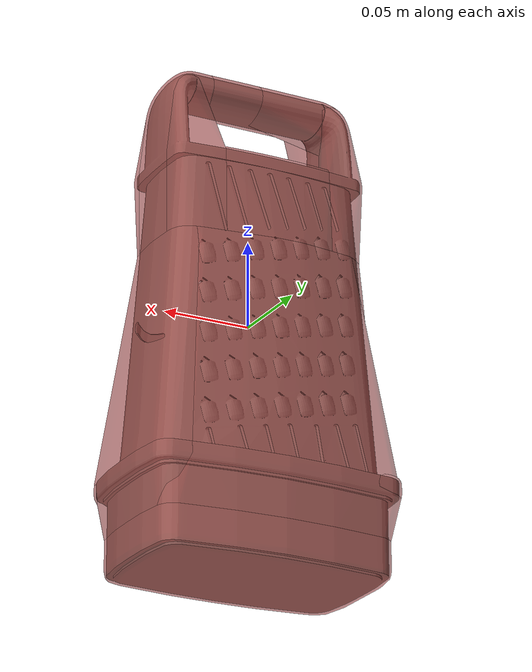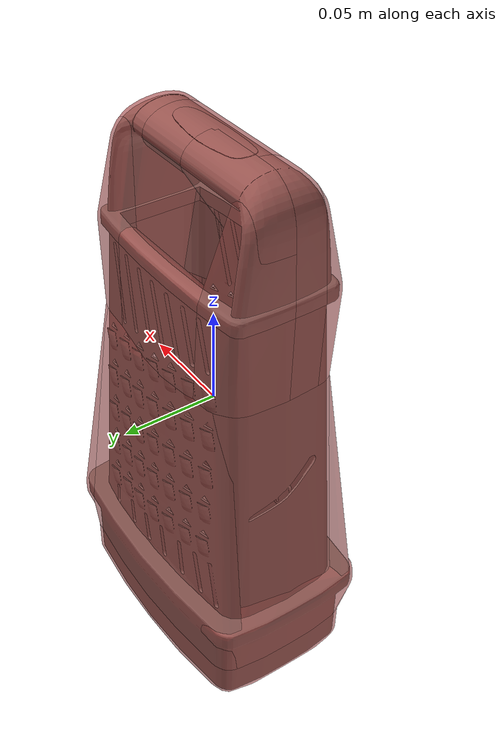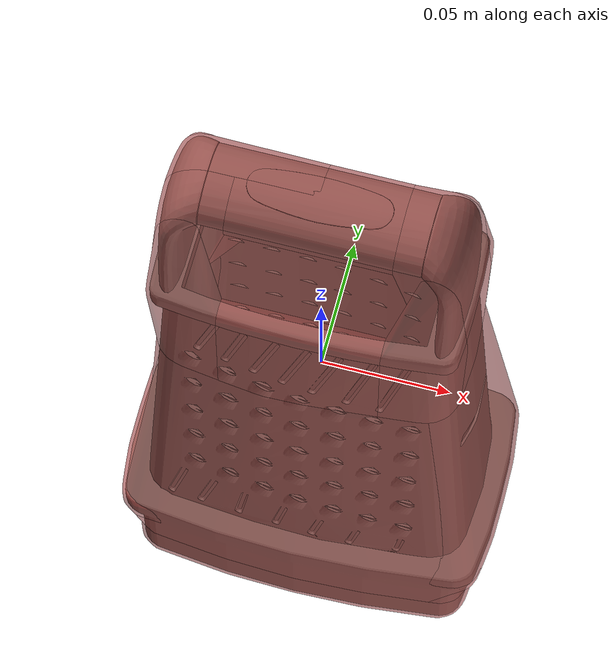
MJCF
<mujoco model="model">
  <option timestep="0.002" gravity="0.0 0.0 -9.81"/>
  <compiler angle="radian"/>
  <asset>
    <mesh file="visual/CheeseGrater001.obj" name="CheeseGrater001_vis"/>
    <mesh file="visual/Prop.obj" name="CheeseGrater001_Prop_vis"/>
    <texture file="visual/T_BC001.png" name="CheeseGrater001_material" type="2d"/>
    <material name="CheeseGrater001_material" rgba="1 1 1 1.0" texture="CheeseGrater001_material" shininess="0.5" specular="0.3103448502657381"/>
    <texture file="visual/T_BC001.png" name="CheeseGrater001_Prop_material" type="2d"/>
    <material name="CheeseGrater001_Prop_material" rgba="1 1 1 1.0" texture="CheeseGrater001_Prop_material" shininess="0.1" specular="1"/>
    <mesh file="collision/collision_mesh_collision_0.obj" name="CheeseGrater001_collision_mesh_0"/>
    <mesh file="collision/collision_mesh_collision_1.obj" name="CheeseGrater001_collision_mesh_1"/>
    <mesh file="collision/collision_mesh_collision_2.obj" name="CheeseGrater001_collision_mesh_2"/>
    <mesh file="collision/collision_mesh_collision_3.obj" name="CheeseGrater001_collision_mesh_3"/>
    <mesh file="collision/collision_mesh_collision_4.obj" name="CheeseGrater001_collision_mesh_4"/>
    <mesh file="collision/collision_mesh_collision_5.obj" name="CheeseGrater001_collision_mesh_5"/>
    <mesh file="collision/collision_mesh_collision_6.obj" name="CheeseGrater001_collision_mesh_6"/>
    <mesh file="collision/collision_mesh_collision_7.obj" name="CheeseGrater001_collision_mesh_7"/>
    <mesh file="collision/collision_mesh_collision_8.obj" name="CheeseGrater001_collision_mesh_8"/>
    <mesh file="collision/collision_mesh_collision_9.obj" name="CheeseGrater001_collision_mesh_9"/>
    <mesh file="collision/collision_mesh_collision_10.obj" name="CheeseGrater001_collision_mesh_10"/>
    <mesh file="collision/collision_mesh_collision_11.obj" name="CheeseGrater001_collision_mesh_11"/>
    <mesh file="collision/collision_mesh_collision_12.obj" name="CheeseGrater001_collision_mesh_12"/>
    <mesh file="collision/collision_mesh_collision_13.obj" name="CheeseGrater001_collision_mesh_13"/>
    <mesh file="collision/collision_mesh_collision_14.obj" name="CheeseGrater001_collision_mesh_14"/>
    <mesh file="collision/collision_mesh_collision_15.obj" name="CheeseGrater001_collision_mesh_15"/>
  </asset>
  <default>
    <default class="visual">
      <geom conaffinity="0" contype="0" group="1" type="mesh"/>
    </default>
    <default class="collision">
      <geom group="0" rgba="0.5 0 0 0.5" density="1.0" solref="0.004 1" solimp="0.998 0.998 0.001"/>
    </default>
    <default class="spawn">
      <geom group="0" rgba="1 1 1 0.5" contype="0" conaffinity="0"/>
      <site group="0" rgba="1 1 1 0.5"/>
    </default>
    <default class="region">
      <geom group="1" conaffinity="0" contype="0" rgba="0 1 0 0" mass="0"/>
    </default>
  </default>
  <worldbody>
    <body>
      <body name="object">
        <geom mesh="CheeseGrater001_vis" type="mesh" solimp="0.998 0.998 0.001" solref="0.001 1" friction="0.95 0.3 0.1" class="visual" material="CheeseGrater001_material"/>
        <body name="CheeseGrater001_Prop">
          <geom mesh="CheeseGrater001_Prop_vis" type="mesh" solimp="0.998 0.998 0.001" solref="0.001 1" friction="0.95 0.3 0.1" class="visual" material="CheeseGrater001_Prop_material"/>
        </body>
        <geom class="region" name="reg_bbox" type="box" pos="3.750000000038445e-07 9.499999999995623e-07 -4.495000000000193e-05" size="0.07539923500000001 0.0480098 0.14347207"/>
        <geom mesh="CheeseGrater001_collision_mesh_0" type="mesh" class="collision"/>
        <geom mesh="CheeseGrater001_collision_mesh_1" type="mesh" class="collision"/>
        <geom mesh="CheeseGrater001_collision_mesh_2" type="mesh" class="collision"/>
        <geom mesh="CheeseGrater001_collision_mesh_3" type="mesh" class="collision"/>
        <geom mesh="CheeseGrater001_collision_mesh_4" type="mesh" class="collision"/>
        <geom mesh="CheeseGrater001_collision_mesh_5" type="mesh" class="collision"/>
        <geom mesh="CheeseGrater001_collision_mesh_6" type="mesh" class="collision"/>
        <geom mesh="CheeseGrater001_collision_mesh_7" type="mesh" class="collision"/>
        <geom mesh="CheeseGrater001_collision_mesh_8" type="mesh" class="collision"/>
        <geom mesh="CheeseGrater001_collision_mesh_9" type="mesh" class="collision"/>
        <geom mesh="CheeseGrater001_collision_mesh_10" type="mesh" class="collision"/>
        <geom mesh="CheeseGrater001_collision_mesh_11" type="mesh" class="collision"/>
        <geom mesh="CheeseGrater001_collision_mesh_12" type="mesh" class="collision"/>
        <geom mesh="CheeseGrater001_collision_mesh_13" type="mesh" class="collision"/>
        <geom mesh="CheeseGrater001_collision_mesh_14" type="mesh" class="collision"/>
        <geom mesh="CheeseGrater001_collision_mesh_15" type="mesh" class="collision"/>
      </body>
    </body>
  </worldbody>
  <actuator/>
</mujoco>
